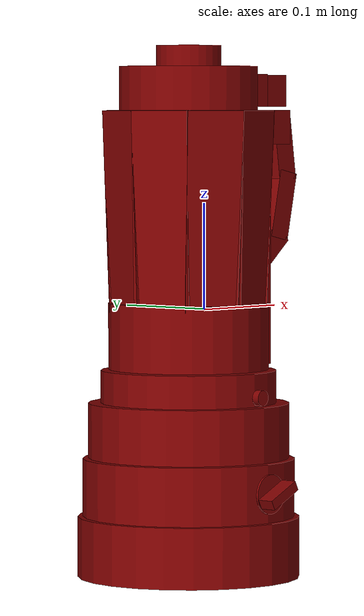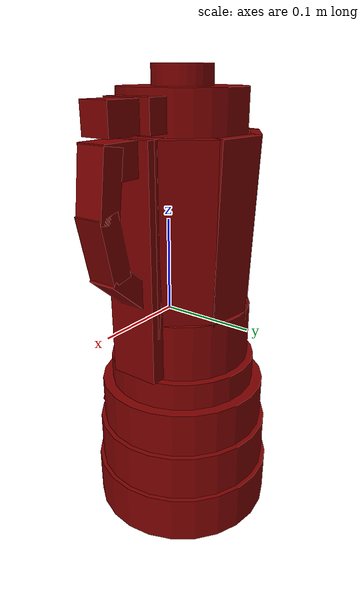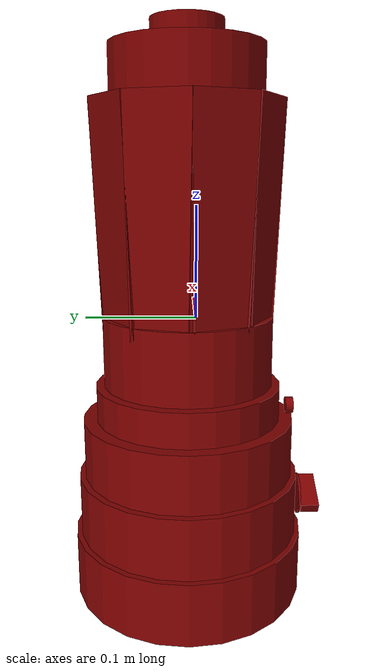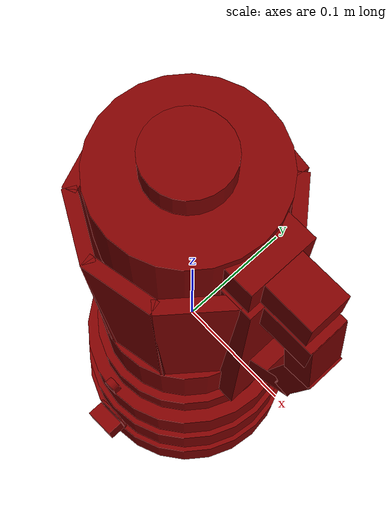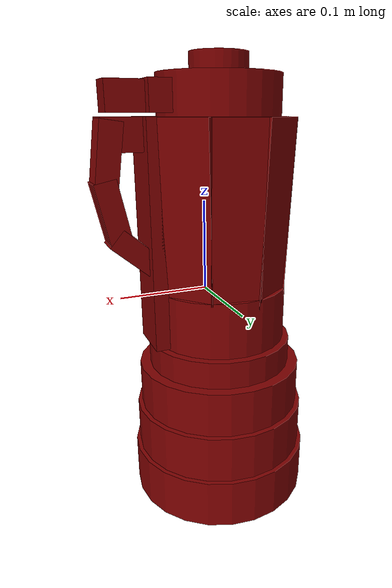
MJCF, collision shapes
<?xml version='1.0' encoding='UTF-8'?>
<mujoco model="model">
  <option timestep="0.002" gravity="0.0 0.0 -9.81"/>
  <compiler angle="radian"/>
  <asset>
    <mesh file="visuals/Blade001.obj" name="Blade001_vis"/>
    <mesh file="visuals/Body001.obj" name="Body001_vis"/>
    <mesh file="visuals/Button001.obj" name="Button001_vis"/>
    <mesh file="visuals/Jug001.obj" name="Jug001_vis"/>
    <mesh file="visuals/Jug001_Clear.obj" name="Jug001_Clear_vis"/>
    <mesh file="visuals/Knob001.obj" name="Knob001_vis"/>
    <mesh file="visuals/Lid001.obj" name="Lid001_vis"/>
    <texture file="visuals/T_BC001.png" name="Body001_material" type="2d"/>
    <material name="Body001_material" rgba="1 1 1 1.0" texture="Body001_material" shininess="0.1" specular="1"/>
    <texture file="visuals/T_BC001.png" name="Button001_material" type="2d"/>
    <material name="Button001_material" rgba="1 1 1 1.0" texture="Button001_material" shininess="0.4472135901451111" specular="0.3103448502657381"/>
    <texture file="visuals/T_BC001.png" name="Jug001_material" type="2d"/>
    <material name="Jug001_material" rgba="1 1 1 1.0" texture="Jug001_material" shininess="0.4472135901451111" specular="0.3103448502657381"/>
    <texture file="visuals/T_BC001.png" name="Blade001_material" type="2d"/>
    <material name="Blade001_material" rgba="1 1 1 1.0" texture="Blade001_material" shininess="0.4472135901451111" specular="0.3103448502657381"/>
    <texture file="visuals/T_BC001.png" name="Jug001_Clear_material" type="2d"/>
    <material name="Jug001_Clear_material" rgba="1 1 1 0.800000011920929" texture="Jug001_Clear_material" shininess="0.1" specular="0.3103448502657381"/>
    <texture file="visuals/T_BC001.png" name="Lid001_material" type="2d"/>
    <material name="Lid001_material" rgba="1 1 1 1.0" texture="Lid001_material" shininess="0.1" specular="4"/>
    <texture file="visuals/T_BC001.png" name="Knob001_material" type="2d"/>
    <material name="Knob001_material" rgba="1 1 1 1.0" texture="Knob001_material" shininess="0.4472135901451111" specular="0.3103448502657381"/>
  </asset>
  <default>
    <default class="visual">
      <geom conaffinity="0" contype="0" group="1" type="mesh"/>
    </default>
    <default class="collision">
      <geom group="0" rgba="0.5 0 0 0.5"/>
    </default>
    <default class="spawn">
      <geom group="0" rgba="1 1 1 0.5" contype="0" conaffinity="0"/>
      <site group="0" rgba="1 1 1 0.5"/>
    </default>
    <default class="region">
      <geom group="1" conaffinity="0" contype="0" rgba="0 1 0 0"/>
    </default>
  </default>
  <worldbody>
    <body>
      <body name="object">
        <geom mesh="Body001_vis" type="mesh" solimp="0.998 0.998 0.001" solref="0.001 1" friction="0.95 0.3 0.1" class="visual" material="Body001_material"/>
        <geom class="collision" type="cylinder" pos="-0.013871 0.007591 -0.223428" size="0.10469318181276321 0.028516290709376335" quat="1.0 0.0 0.0 0.0" density="1000.0"/>
        <geom class="collision" type="cylinder" pos="-0.013871 0.007591 -0.167227" size="0.10001954436302185 0.02724328637123108" quat="1.0 0.0 0.0 0.0" density="1000.0"/>
        <geom class="collision" type="cylinder" pos="-0.013871 0.007591 -0.113458" size="0.09488319605588913 0.02584424987435341" quat="1.0 0.0 0.0 0.0" density="1000.0"/>
        <geom class="collision" type="cylinder" pos="-0.013871 0.007591 -0.072160" size="0.08281132578849792 0.015388729982078075" quat="1.0 0.0 0.0 0.0" density="1000.0"/>
        <body name="Button001">
          <joint axis="0.0 1.0 0.0" pos="-0.015958 -0.082917 -0.078394" limited="true" name="Button001_joint" range="0.0 0.005" type="slide" damping="1" frictionloss="1" armature=".01" stiffness="0.05"/>
          <geom mesh="Button001_vis" type="mesh" solimp="0.998 0.998 0.001" solref="0.001 1" friction="0.95 0.3 0.1" class="visual" material="Button001_material"/>
          <geom class="collision" type="cylinder" pos="-0.015958 -0.084341 -0.078394" size="0.007227575872093439 0.00347500410862267" quat="0.7071068286895752 0.7071067690849304 0.0 0.0" density="1000.0"/>
        </body>
        <body name="Jug001">
          <joint axis="0.0 0.0 1.0" pos="0.014024 0.007807 0.066221" limited="true" name="Jug001_joint" range="0.0 0.1" type="slide" damping="1" frictionloss="1" armature=".01" stiffness="0.05"/>
          <geom mesh="Jug001_vis" type="mesh" solimp="0.998 0.998 0.001" solref="0.001 1" friction="0.95 0.3 0.1" class="visual" material="Jug001_material"/>
          <geom class="collision" type="cylinder" pos="-0.013871 0.007591 -0.024588" size="0.0755901038646698 0.031190989539027214" quat="1.0 0.0 0.0 0.0" density="1000.0"/>
          <geom class="collision" type="box" pos="0.060350 0.007583 0.066690" size="0.011583236046135426 0.027263129130005836 0.12090808898210526" quat="1.0 0.0 0.0 0.0" density="1000.0"/>
          <geom class="collision" type="box" pos="0.091598 0.007480 0.171127" size="0.021328119561076164 0.015841878950595856 0.01625138334929943" quat="1.0 0.0 0.0 0.0" density="1000.0"/>
          <geom class="collision" type="box" pos="0.106305 0.007914 0.152478" size="0.03252037614583969 0.01542231347411871 0.011712320148944855" quat="0.7547217607498169 0.0 0.6560450196266174 0.0" density="1000.0"/>
          <geom class="collision" type="box" pos="0.105375 0.007914 0.096513" size="0.03252037614583969 0.01542231161147356 0.011712320148944855" quat="0.6293348073959351 0.0 0.7771342992782593 0.0" density="1000.0"/>
          <geom class="collision" type="box" pos="0.081007 0.007914 0.051454" size="0.030332840979099274 0.01542231161147356 0.01171231921762228" quat="0.34662744402885437 0.0 0.93800288438797 0.0" density="1000.0"/>
          <body name="Blade001">
            <joint axis="0.0 0.0 1.0" pos="-0.013907 0.007809 0.019639" limited="false" name="Blade001_joint" range="0 360" type="hinge" damping="1" frictionloss="1" armature=".01" stiffness="0.05"/>
            <geom mesh="Blade001_vis" type="mesh" solimp="0.998 0.998 0.001" solref="0.001 1" friction="0.95 0.3 0.1" class="visual" material="Blade001_material"/>
            <geom class="collision" type="box" pos="-0.013658 0.006343 0.014183" size="0.014491913840174675 0.017638348042964935 0.0007777351420372725" quat="1.0 0.0 0.0 0.0" density="1000.0"/>
            <geom class="collision" type="box" pos="-0.013843 0.039732 0.014183" size="0.0050698015838861465 0.016161534935235977 0.0007777351420372725" quat="1.0 0.0 0.0 0.0" density="1000.0"/>
            <geom class="collision" type="box" pos="-0.013843 -0.024489 0.014183" size="0.0050698015838861465 0.016161534935235977 0.0007777351420372725" quat="1.0 0.0 0.0 0.0" density="1000.0"/>
            <geom class="collision" type="box" pos="-0.045533 0.007603 0.019175" size="0.0050698015838861465 0.01778339222073555 0.0007777351420372725" quat="0.6976118087768555 -0.11548939347267151 0.1154894009232521 -0.6976117491722107" density="1000.0"/>
            <geom class="collision" type="box" pos="0.017692 0.007603 0.019277" size="0.0050698015838861465 0.01746790111064911 0.0007777351420372725" quat="0.6976118087768555 -0.11548939347267151 -0.1154894009232521 0.6976117491722107" density="1000.0"/>
          </body>
          <body name="Jug001_Clear">
            <geom class="region" name="reg_int" type="box" pos="-0.013822000000000004 0.007855000000000001 0.0917755" size="0.053305000000000005 0.053356 0.09673949999999999"/>
            <geom mesh="Jug001_Clear_vis" type="mesh" solimp="0.998 0.998 0.001" solref="0.001 1" friction="0.95 0.3 0.1" class="visual" material="Jug001_Clear_material"/>
            <geom class="collision" type="box" pos="0.054421 0.007583 0.091325" size="0.008866118267178535 0.027263129130005836 0.0962737575173378" quat="1.0 0.0 0.0 0.0" density="1000.0"/>
            <geom class="collision" type="box" pos="0.038913 -0.035515 0.091325" size="0.005154433660209179 0.027263129130005836 0.09614638984203339" quat="0.9419527649879456 0.006479029078036547 0.018207471817731857 -0.33518874645233154" density="1000.0"/>
            <geom class="collision" type="box" pos="-0.046341 -0.052287 0.091325" size="0.005154434125870466 0.027263129130005836 0.09614638984203339" quat="0.5137460827827454 0.016579383984208107 0.009930452331900597 -0.8577246069908142" density="1000.0"/>
            <geom class="collision" type="box" pos="-0.001074 -0.059274 0.091325" size="0.005154433660209179 0.027263129130005836 0.09614638984203339" quat="0.771568238735199 0.012290717102587223 0.01491402555257082 -0.6358529329299927" density="1000.0"/>
            <geom class="collision" type="box" pos="-0.050838 0.065282 0.091325" size="0.005154433660209179 0.027263129130005836 0.09614638984203339" quat="0.4774850010871887 -0.016979556530714035 0.00922954361885786 0.8784273266792297" density="1000.0"/>
            <geom class="collision" type="box" pos="-0.004322 0.075463 0.091325" size="0.005154433660209179 0.027263129130005836 0.09614638984203339" quat="0.7537038326263428 -0.01269812323153019 0.014568712562322617 0.6569300293922424" density="1000.0"/>
            <geom class="collision" type="box" pos="-0.079059 0.028308 0.091325" size="0.005154433660209179 0.027263129130005836 0.09614638984203339" quat="0.14990121126174927 -0.019107436761260033 0.002897514495998621 0.9885120987892151" density="1000.0"/>
            <geom class="collision" type="box" pos="-0.077349 -0.017464 0.091325" size="0.005154433660209179 0.027263129130005836 0.09614638984203339" quat="0.1901738941669464 0.018973061814904213 0.0036759646609425545 -0.9815601706504822" density="1000.0"/>
            <geom class="collision" type="box" pos="0.037885 0.052388 0.091325" size="0.005154434125870466 0.027263129130005836 0.09614638984203339" quat="0.9367375373840332 -0.006755633279681206 0.018106667324900627 0.3494986593723297" density="1000.0"/>
          </body>
          <body name="Lid001">
            <joint axis="0.0 0.0 1.0" pos="0.006463 0.007805 0.206557" limited="true" name="Lid001_joint" range="0.0 0.1" type="slide" damping="1" frictionloss="1" armature=".01" stiffness="0.05"/>
            <geom mesh="Lid001_vis" type="mesh" solimp="0.998 0.998 0.001" solref="0.001 1" friction="0.95 0.3 0.1" class="visual" material="Lid001_material"/>
            <geom class="collision" type="cylinder" pos="-0.013651 0.007871 0.237696" size="0.03057319112122059 0.010535256937146187" quat="1.0 0.0 0.0 0.0" density="1000.0"/>
            <geom class="collision" type="cylinder" pos="-0.013651 0.007871 0.193636" size="0.06502468883991241 0.03509926795959473" quat="1.0 0.0 0.0 0.0" density="1000.0"/>
            <geom class="collision" type="box" pos="0.056636 0.008011 0.206382" size="0.01173425279557705 0.026565389707684517 0.015394516289234161" quat="1.0 0.0 0.0 0.0" density="1000.0"/>
            <geom class="collision" type="box" pos="0.086302 0.007499 0.205878" size="0.020895959809422493 0.01577948033809662 0.01489027589559555" quat="1.0 0.0 0.0 0.0" density="1000.0"/>
          </body>
        </body>
        <body name="Knob001">
          <joint axis="0.0 1.0 0.0" pos="-0.013924 -0.094731 -0.167099" limited="true" name="Knob001_joint" range="0.0 4.014257279586958" type="hinge" damping="0.05" armature="0.001"/>
          <geom mesh="Knob001_vis" type="mesh" solimp="0.998 0.998 0.001" solref="0.001 1" friction="0.95 0.3 0.1" class="visual" material="Knob001_material"/>
          <geom class="collision" type="cylinder" pos="-0.013965 -0.095030 -0.167199" size="0.018516525626182556 0.0010534262983128428" quat="0.7071068286895752 0.7071067690849304 0.0 0.0" density="1000.0"/>
          <geom class="collision" type="box" pos="-0.013924 -0.104933 -0.167099" size="0.01824144460260868 0.00815507210791111 0.004754546098411083" quat="0.9741969108581543 8.065185672937391e-16 -0.2256997674703598 7.72537589455169e-09" density="1000.0"/>
        </body>
        <geom class="region" name="reg_main" type="box" pos="-0.013871499999999995 0.0075910000000000005 0.0" size="0.1053385 0.105347 0.251751"/>
      </body>
    </body>
  </worldbody>
  <actuator>
    <motor name="Button001_joint_actuator" joint="Button001_joint" gear="0.2"/>
    <motor name="Jug001_joint_actuator" joint="Jug001_joint" gear="200"/>
    <motor name="Knob001_joint_actuator" joint="Knob001_joint" gear="10"/>
    <motor name="Blade001_joint_actuator" joint="Blade001_joint" gear="10"/>
    <motor name="Lid001_joint_actuator" joint="Lid001_joint" gear="40"/>
  </actuator>
</mujoco>
